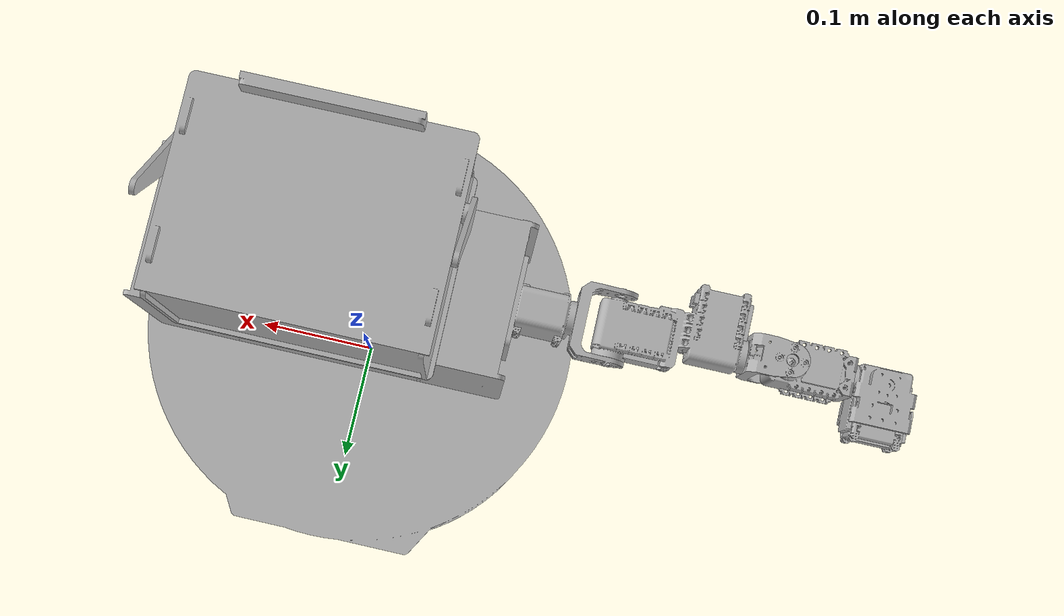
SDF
<sdf version='1.4'>
  <model name='v2mini'>
    <link name='base_footprint'>
      <pose>0 0 0 0 -0 0</pose>
      <inertial>
        <pose>0 0 0 0 -0 0</pose>
        <mass>10</mass>
        <inertia>
          <ixx>100</ixx>
          <ixy>0</ixy>
          <ixz>0</ixz>
          <iyy>100</iyy>
          <iyz>0</iyz>
          <izz>100</izz>
        </inertia>
      </inertial>
      <collision name='base_footprint_collision_base_link'>
        <pose>0 0 0.066 0 -0 0</pose>
        <geometry>
          <cylinder>
            <length>0.132</length>
            <radius>0.175</radius>
          </cylinder>
        </geometry>
      </collision>
      <visual name='base_footprint_visual_base_link'>
        <pose>0 0 0.0192 0 -0 0</pose>
        <geometry>
          <mesh>
            <scale>1 1 1</scale>
            <uri>model://v2mini_description/meshes/base/base.dae</uri>
          </mesh>
        </geometry>
      </visual>
      <velocity_decay>
        <linear>0</linear>
        <angular>0</angular>
      </velocity_decay>
    </link>
    <link name='back_wheel'>
      <pose>0 0.1405 0.03 0 -0 0</pose>
      <inertial>
        <pose>0 0 0 0 -0 0</pose>
        <mass>1</mass>
        <inertia>
          <ixx>1</ixx>
          <ixy>0</ixy>
          <ixz>0</ixz>
          <iyy>1</iyy>
          <iyz>0</iyz>
          <izz>1</izz>
        </inertia>
      </inertial>
      <visual name='back_wheel_visual'>
        <pose>0 0 0 0 -0 3.14159</pose>
        <geometry>
          <mesh>
            <scale>1 1 1</scale>
            <uri>model://v2mini_description/meshes/base/base_wheel.dae</uri>
          </mesh>
        </geometry>
      </visual>
      <velocity_decay>
        <linear>0</linear>
        <angular>0</angular>
      </velocity_decay>
    </link>
    <joint name='back_axel' type='revolute'>
      <child>back_wheel</child>
      <parent>base_footprint</parent>
      <axis>
        <xyz>0 1 0</xyz>
        <limit>
          <lower>-1e+16</lower>
          <upper>1e+16</upper>
        </limit>
        <dynamics/>
      </axis>
    </joint>
    <link name='front_wheel'>
      <pose>0 -0.1405 0.03 0 -0 0</pose>
      <inertial>
        <pose>0 0 0 0 -0 0</pose>
        <mass>1</mass>
        <inertia>
          <ixx>1</ixx>
          <ixy>0</ixy>
          <ixz>0</ixz>
          <iyy>1</iyy>
          <iyz>0</iyz>
          <izz>1</izz>
        </inertia>
      </inertial>
      <visual name='front_wheel_visual'>
        <pose>0 0 0 0 -0 0</pose>
        <geometry>
          <mesh>
            <scale>1 1 1</scale>
            <uri>model://v2mini_description/meshes/base/base_wheel.dae</uri>
          </mesh>
        </geometry>
      </visual>
      <velocity_decay>
        <linear>0</linear>
        <angular>0</angular>
      </velocity_decay>
    </link>
    <joint name='front_axel' type='revolute'>
      <child>front_wheel</child>
      <parent>base_footprint</parent>
      <axis>
        <xyz>0 1 0</xyz>
        <limit>
          <lower>-1e+16</lower>
          <upper>1e+16</upper>
        </limit>
        <dynamics/>
      </axis>
    </joint>
    <link name='left_wheel'>
      <pose>0.1405 0 0.03 0 -0 0</pose>
      <inertial>
        <pose>0 0 0 0 -0 0</pose>
        <mass>1</mass>
        <inertia>
          <ixx>1</ixx>
          <ixy>0</ixy>
          <ixz>0</ixz>
          <iyy>1</iyy>
          <iyz>0</iyz>
          <izz>1</izz>
        </inertia>
      </inertial>
      <visual name='left_wheel_visual'>
        <pose>0 0 0 0 -0 1.57079</pose>
        <geometry>
          <mesh>
            <scale>1 1 1</scale>
            <uri>model://v2mini_description/meshes/base/base_wheel.dae</uri>
          </mesh>
        </geometry>
      </visual>
      <velocity_decay>
        <linear>0</linear>
        <angular>0</angular>
      </velocity_decay>
    </link>
    <joint name='left_axel' type='revolute'>
      <child>left_wheel</child>
      <parent>base_footprint</parent>
      <axis>
        <xyz>1 0 0</xyz>
        <limit>
          <lower>-1e+16</lower>
          <upper>1e+16</upper>
        </limit>
        <dynamics/>
      </axis>
    </joint>
    <link name='right_wheel'>
      <pose>-0.1405 0 0.03 0 -0 0</pose>
      <inertial>
        <pose>0 0 0 0 -0 0</pose>
        <mass>1</mass>
        <inertia>
          <ixx>1</ixx>
          <ixy>0</ixy>
          <ixz>0</ixz>
          <iyy>1</iyy>
          <iyz>0</iyz>
          <izz>1</izz>
        </inertia>
      </inertial>
      <visual name='right_wheel_visual'>
        <pose>0 0 0 0 0 -1.57079</pose>
        <geometry>
          <mesh>
            <scale>1 1 1</scale>
            <uri>model://v2mini_description/meshes/base/base_wheel.dae</uri>
          </mesh>
        </geometry>
      </visual>
      <velocity_decay>
        <linear>0</linear>
        <angular>0</angular>
      </velocity_decay>
    </link>
    <joint name='right_axel' type='revolute'>
      <child>right_wheel</child>
      <parent>base_footprint</parent>
      <axis>
        <xyz>1 0 0</xyz>
        <limit>
          <lower>-1e+16</lower>
          <upper>1e+16</upper>
        </limit>
        <dynamics/>
      </axis>
    </joint>
    <link name='torso_link'>
      <pose>0 0 0.0192 0 -0 0</pose>
      <inertial>
        <pose>0 0 0 0 -0 0</pose>
        <mass>5.01</mass>
        <inertia>
          <ixx>101</ixx>
          <ixy>0</ixy>
          <ixz>0</ixz>
          <iyy>101</iyy>
          <iyz>0</iyz>
          <izz>101</izz>
        </inertia>
      </inertial>
      <collision name='torso_link_collision_arm_link1'>
        <pose>0 0 0 0 -0 0</pose>
        <geometry>
          <mesh>
            <scale>1 1 1</scale>
            <uri>model://v2mini_description/meshes/arm/arm_link1.dae</uri>
          </mesh>
        </geometry>
      </collision>
      <visual name='torso_link_visual'>
        <pose>0 0 0 0 -0 0</pose>
        <geometry>
          <mesh>
            <scale>1 1 1</scale>
            <uri>model://v2mini_description/meshes/torso/torso.dae</uri>
          </mesh>
        </geometry>
      </visual>
      <visual name='torso_link_visual_arm_link1'>
        <pose>0 0 0 0 -0 0</pose>
        <geometry>
          <mesh>
            <scale>1 1 1</scale>
            <uri>model://v2mini_description/meshes/arm/arm_link1.dae</uri>
          </mesh>
        </geometry>
      </visual>
      <velocity_decay>
        <linear>0</linear>
        <angular>0</angular>
      </velocity_decay>
    </link>
    <joint name='torso_slide' type='prismatic'>
      <child>torso_link</child>
      <parent>base_footprint</parent>
      <axis>
        <xyz>0 0 1</xyz>
        <limit>
          <lower>-0.09</lower>
          <upper>0</upper>
          <effort>10</effort>
          <velocity>0.5</velocity>
        </limit>
        <dynamics/>
      </axis>
    </joint>
    <link name='neck_link'>
      <pose>0 0 0.0192 0 -0 0</pose>
      <inertial>
        <pose>0 0 0 0 -0 0</pose>
        <mass>1</mass>
        <inertia>
          <ixx>1</ixx>
          <ixy>0</ixy>
          <ixz>0</ixz>
          <iyy>1</iyy>
          <iyz>0</iyz>
          <izz>1</izz>
        </inertia>
      </inertial>
      <visual name='neck_link_visual'>
        <pose>0 0 0 0 -0 0</pose>
        <geometry>
          <mesh>
            <scale>1 1 1</scale>
            <uri>model://v2mini_description/meshes/head/neck.dae</uri>
          </mesh>
        </geometry>
      </visual>
      <velocity_decay>
        <linear>0</linear>
        <angular>0</angular>
      </velocity_decay>
    </link>
    <joint name='neckpan' type='revolute'>
      <child>neck_link</child>
      <parent>torso_link</parent>
      <axis>
        <xyz>0 0 1</xyz>
        <limit>
          <lower>-2.9</lower>
          <upper>2.9</upper>
          <effort>10</effort>
          <velocity>10</velocity>
        </limit>
        <dynamics/>
      </axis>
    </joint>
    <link name='head_link'>
      <pose>0 0 0.514415 0 -0 0</pose>
      <inertial>
        <pose>0 0 0 0 -0 0</pose>
        <mass>1</mass>
        <inertia>
          <ixx>1</ixx>
          <ixy>0</ixy>
          <ixz>0</ixz>
          <iyy>1</iyy>
          <iyz>0</iyz>
          <izz>1</izz>
        </inertia>
      </inertial>
      <visual name='head_link_visual'>
        <pose>0 0 0 0 -0 0</pose>
        <geometry>
          <mesh>
            <scale>1 1 1</scale>
            <uri>model://v2mini_description/meshes/head/head.dae</uri>
          </mesh>
        </geometry>
      </visual>
      <velocity_decay>
        <linear>0</linear>
        <angular>0</angular>
      </velocity_decay>
    </link>
    <joint name='neck_tilt' type='revolute'>
      <child>head_link</child>
      <parent>neck_link</parent>
      <axis>
        <xyz>1 0 0</xyz>
        <limit>
          <lower>-0.5</lower>
          <upper>0.3</upper>
          <effort>1000</effort>
          <velocity>0.1</velocity>
        </limit>
        <dynamics/>
      </axis>
    </joint>
    <link name='arm_link2'>
      <pose>-0.158825 -0.002 0.426707 -2.65359e-06 2.65359e-06 3.14159</pose>
      <inertial>
        <pose>0 0 0 0 -0 0</pose>
        <mass>0.01</mass>
        <inertia>
          <ixx>1</ixx>
          <ixy>0</ixy>
          <ixz>0</ixz>
          <iyy>1</iyy>
          <iyz>0</iyz>
          <izz>1</izz>
        </inertia>
      </inertial>
      <collision name='arm_link2_collision'>
        <pose>0 0 0 3.14159 2.65359e-06 3.14159</pose>
        <geometry>
          <mesh>
            <scale>1 1 1</scale>
            <uri>model://v2mini_description/meshes/arm/arm_link2.dae</uri>
          </mesh>
        </geometry>
      </collision>
      <visual name='arm_link2_visual'>
        <pose>0 0 0 3.14159 2.65359e-06 3.14159</pose>
        <geometry>
          <mesh>
            <scale>1 1 1</scale>
            <uri>model://v2mini_description/meshes/arm/arm_link2.dae</uri>
          </mesh>
        </geometry>
      </visual>
      <velocity_decay>
        <linear>0</linear>
        <angular>0</angular>
      </velocity_decay>
    </link>
    <joint name='arm_joint1' type='revolute'>
      <child>arm_link2</child>
      <parent>torso_link</parent>
      <axis>
        <xyz>-1 0 -2.65359e-06</xyz>
        <limit>
          <lower>-1e+16</lower>
          <upper>1e+16</upper>
        </limit>
        <dynamics/>
      </axis>
    </joint>
    <link name='arm_link3'>
      <pose>-0.184825 -0.002 0.426707 1.57079 -2.6536e-06 1.57079</pose>
      <inertial>
        <pose>0 0 0 0 -0 0</pose>
        <mass>0.01</mass>
        <inertia>
          <ixx>1</ixx>
          <ixy>0</ixy>
          <ixz>0</ixz>
          <iyy>1</iyy>
          <iyz>0</iyz>
          <izz>1</izz>
        </inertia>
      </inertial>
      <collision name='arm_link3_collision'>
        <pose>0 0 0 -3.14159 -1.57079 1.57079</pose>
        <geometry>
          <mesh>
            <scale>1 1 1</scale>
            <uri>model://v2mini_description/meshes/arm/arm_link3.dae</uri>
          </mesh>
        </geometry>
      </collision>
      <visual name='arm_link3_visual'>
        <pose>0 0 0 -3.14159 -1.57079 1.57079</pose>
        <geometry>
          <mesh>
            <scale>1 1 1</scale>
            <uri>model://v2mini_description/meshes/arm/arm_link3.dae</uri>
          </mesh>
        </geometry>
      </visual>
      <velocity_decay>
        <linear>0</linear>
        <angular>0</angular>
      </velocity_decay>
    </link>
    <joint name='arm_joint2' type='revolute'>
      <child>arm_link3</child>
      <parent>arm_link2</parent>
      <axis>
        <xyz>-3.98038e-06 -1 -2.6536e-06</xyz>
        <limit>
          <lower>-1e+16</lower>
          <upper>1e+16</upper>
        </limit>
        <dynamics/>
      </axis>
    </joint>
    <link name='arm_link4'>
      <pose>-0.270325 -0.00199966 0.426707 1.57079 3.98037e-06 3.14159</pose>
      <inertial>
        <pose>0 0 0 0 -0 0</pose>
        <mass>0.01</mass>
        <inertia>
          <ixx>1</ixx>
          <ixy>0</ixy>
          <ixz>0</ixz>
          <iyy>1</iyy>
          <iyz>0</iyz>
          <izz>1</izz>
        </inertia>
      </inertial>
      <collision name='arm_link4_collision'>
        <pose>0 0 0 -1.5708 2.65359e-06 3.14159</pose>
        <geometry>
          <mesh>
            <scale>1 1 1</scale>
            <uri>model://v2mini_description/meshes/arm/arm_link4.dae</uri>
          </mesh>
        </geometry>
      </collision>
      <visual name='arm_link4_visual'>
        <pose>0 0 0 -1.5708 2.65359e-06 3.14159</pose>
        <geometry>
          <mesh>
            <scale>1 1 1</scale>
            <uri>model://v2mini_description/meshes/arm/arm_link4.dae</uri>
          </mesh>
        </geometry>
      </visual>
      <velocity_decay>
        <linear>0</linear>
        <angular>0</angular>
      </velocity_decay>
    </link>
    <joint name='arm_joint3' type='revolute'>
      <child>arm_link4</child>
      <parent>arm_link3</parent>
      <axis>
        <xyz>-1 5.30718e-06 -3.98037e-06</xyz>
        <limit>
          <lower>-1e+16</lower>
          <upper>1e+16</upper>
        </limit>
        <dynamics/>
      </axis>
    </joint>
    <link name='arm_link5'>
      <pose>-0.296325 -0.00199952 0.426706 -0.46365 -1.57079 -2.67795</pose>
      <inertial>
        <pose>0 0 0 0 -0 0</pose>
        <mass>0.01</mass>
        <inertia>
          <ixx>1</ixx>
          <ixy>0</ixy>
          <ixz>0</ixz>
          <iyy>1</iyy>
          <iyz>0</iyz>
          <izz>1</izz>
        </inertia>
      </inertial>
      <collision name='arm_link5_collision'>
        <pose>0 0 0 -1.57079 -0 -1.57079</pose>
        <geometry>
          <mesh>
            <scale>1 1 1</scale>
            <uri>model://v2mini_description/meshes/arm/arm_link5.dae</uri>
          </mesh>
        </geometry>
      </collision>
      <visual name='arm_link5_visual'>
        <pose>0 0 0 -1.57079 -0 -1.57079</pose>
        <geometry>
          <mesh>
            <scale>1 1 1</scale>
            <uri>model://v2mini_description/meshes/arm/arm_link5.dae</uri>
          </mesh>
        </geometry>
      </visual>
      <velocity_decay>
        <linear>0</linear>
        <angular>0</angular>
      </velocity_decay>
    </link>
    <joint name='arm_joint4' type='revolute'>
      <child>arm_link5</child>
      <parent>arm_link4</parent>
      <axis>
        <xyz>5.30718e-06 2.65358e-06 -1</xyz>
        <limit>
          <lower>-1e+16</lower>
          <upper>1e+16</upper>
        </limit>
        <dynamics/>
      </axis>
    </joint>
    <link name='arm_link6'>
      <pose>-0.337825 -0.00199936 0.426706 1.5708 -6.63396e-06 -3.9804e-06</pose>
      <inertial>
        <pose>0 0 0 0 -0 0</pose>
        <mass>1.01</mass>
        <inertia>
          <ixx>2</ixx>
          <ixy>0</ixy>
          <ixz>0</ixz>
          <iyy>2</iyy>
          <iyz>0</iyz>
          <izz>2</izz>
        </inertia>
      </inertial>
      <collision name='arm_link6_collision'>
        <pose>0 0 0 -1.57079 1.57079 -3.14159</pose>
        <geometry>
          <mesh>
            <scale>1 1 1</scale>
            <uri>model://v2mini_description/meshes/arm/arm_link6.dae</uri>
          </mesh>
        </geometry>
      </collision>
      <collision name='arm_link6_collision_ee_link'>
        <pose>0 0 0 0 -0 0</pose>
        <geometry>
          <box>
            <size>0.01 0.01 0.01</size>
          </box>
        </geometry>
      </collision>
      <visual name='arm_link6_visual'>
        <pose>0 0 0 -1.57079 1.57079 -3.14159</pose>
        <geometry>
          <mesh>
            <scale>1 1 1</scale>
            <uri>model://v2mini_description/meshes/arm/arm_link6.dae</uri>
          </mesh>
        </geometry>
      </visual>
      <velocity_decay>
        <linear>0</linear>
        <angular>0</angular>
      </velocity_decay>
    </link>
    <joint name='arm_joint5' type='revolute'>
      <child>arm_link6</child>
      <parent>arm_link5</parent>
      <axis>
        <xyz>-1 3.9804e-06 -6.63396e-06</xyz>
        <limit>
          <lower>-1e+16</lower>
          <upper>1e+16</upper>
        </limit>
        <dynamics/>
      </axis>
    </joint>
    <plugin name='ros_control' filename='libgazebo_ros_control.so'>
      <robotNamespace>/</robotNamespace>
      <robotSimType>gazebo_ros_control/DefaultRobotHWSim</robotSimType>
    </plugin>
    <plugin name='object_controller' filename='libgazebo_ros_planar_move.so'>
      <commandTopic>cmd_vel</commandTopic>
      <odometryTopic>odom</odometryTopic>
      <odometryFrame>odom</odometryFrame>
      <odometryRate>20.0</odometryRate>
      <robotBaseFrame>base_footprint</robotBaseFrame>
    </plugin>
    <static>0</static>
    <plugin name='gazebo_imu' filename='libgazebo_ros_imu.so'>
      <alwaysOn>true</alwaysOn>
      <bodyName>base_footprint</bodyName>
      <topicName>imu</topicName>
      <serviceName>imu_service</serviceName>
      <gaussianNoise>0.0</gaussianNoise>
      <updateRate>20.0</updateRate>
    </plugin>
  </model>
</sdf>
